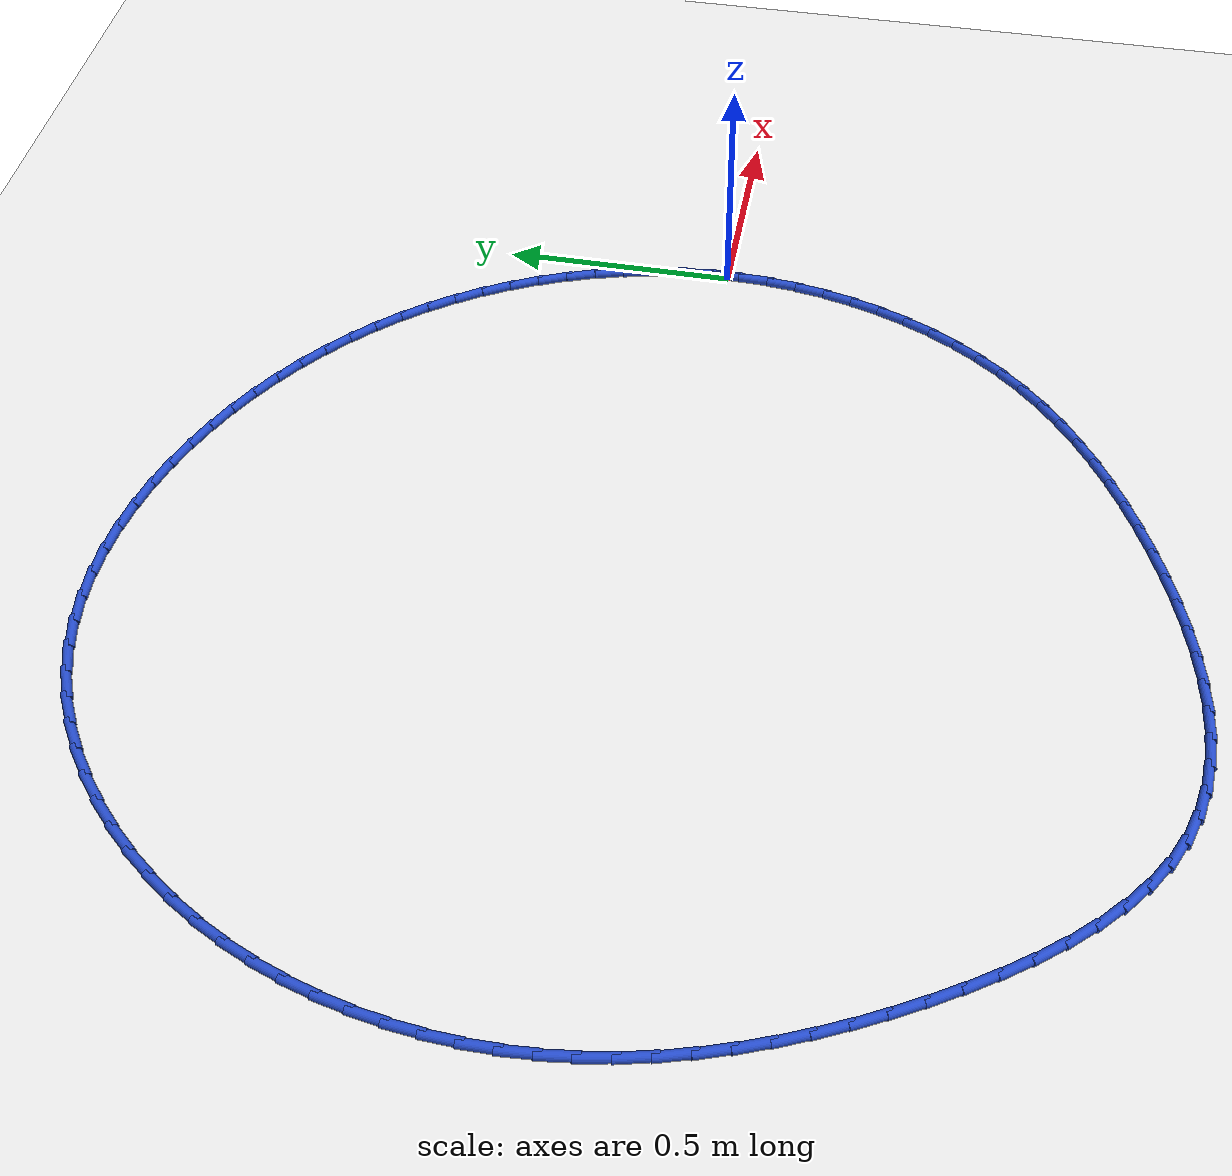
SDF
<sdf version="1.6">
 <world name="default">
  <light name="sun" type="directional">
   <pose>0 0 10 0 -0 0</pose>
   <diffuse>0.8 0.8 0.8 1</diffuse>
   <specular>0.2 0.2 0.2 1</specular>
   <attenuation>
    <range>1000</range>
    <constant>0.9</constant>
    <linear>0.01</linear>
    <quadratic>0.001</quadratic>
   </attenuation>
   <direction>-0.5 0.1 -0.9</direction>
  </light>
  <model name="ground_plane">
   <static>1</static>
   <link name="link">
    <collision name="collision">
     <geometry><plane><normal>0 0 1</normal><size>100 100</size></plane></geometry>
     <surface><friction><ode><mu>100</mu><mu2>50</mu2></ode></friction></surface>
    </collision>
    <visual name="visual">
     <cast_shadows>0</cast_shadows>
     <geometry><plane><normal>0 0 1</normal><size>100 100</size></plane></geometry>
     <material>
      <script><uri>file://media/materials/scripts/gazebo.material</uri><name>Gazebo/WhiteGlow</name></script>
     </material>
    </visual>
   </link>
  </model>
  <gravity>0 0 -9.8</gravity>
  <magnetic_field>6e-06 2.3e-05 -4.2e-05</magnetic_field>
  <atmosphere type="adiabatic"/>
  <physics name="default_physics" default="0" type="ode">
   <max_step_size>0.001</max_step_size>
   <real_time_factor>1</real_time_factor>
   <real_time_update_rate>1000</real_time_update_rate>
  </physics>
  <scene><ambient>0.4 0.4 0.4 1</ambient><background>0.7 0.7 0.7 1</background><shadows>1</shadows></scene>
  <spherical_coordinates>
   <surface_model>EARTH_WGS84</surface_model>
   <latitude_deg>0</latitude_deg>
   <longitude_deg>0</longitude_deg>
   <elevation>0</elevation>
   <heading_deg>0</heading_deg>
  </spherical_coordinates>
  <model name="line">
   <link name="link_0">
    <pose>-1.734723475976807e-17 9.71445146547012e-17 0.01 0 1.57 -1.5314903765350154</pose>
    <collision name="collision">
     <geometry><cylinder><radius>0.01</radius><length>0.08</length></cylinder></geometry>
    </collision>
    <visual name="visual">
     <material>
      <script><name>Gazebo/Blue</name><uri>file://media/materials/scripts/gazebo.material</uri></script>
     </material>
     <geometry><cylinder><radius>0.01</radius><length>0.08</length></cylinder></geometry>
    </visual>
   </link>
   <link name="link_1">
    <pose>-0.0025888472064386184 0.0658300799792817 0.01 0 1.57 -1.4633554747407136</pose>
    <collision name="collision">
     <geometry><cylinder><radius>0.01</radius><length>0.08</length></cylinder></geometry>
    </collision>
    <visual name="visual">
     <material>
      <script><name>Gazebo/Blue</name><uri>file://media/materials/scripts/gazebo.material</uri></script>
     </material>
     <geometry><cylinder><radius>0.01</radius><length>0.08</length></cylinder></geometry>
    </visual>
   </link>
   <link name="link_2">
    <pose>-0.0096381332063143 0.13118827850951043 0.01 0 1.57 -1.3970134633555027</pose>
    <collision name="collision">
     <geometry><cylinder><radius>0.01</radius><length>0.08</length></cylinder></geometry>
    </collision>
    <visual name="visual">
     <material>
      <script><name>Gazebo/Blue</name><uri>file://media/materials/scripts/gazebo.material</uri></script>
     </material>
     <geometry><cylinder><radius>0.01</radius><length>0.08</length></cylinder></geometry>
    </visual>
   </link>
   <link name="link_3">
    <pose>-0.020991724637044087 0.1958613180532604 0.01 0 1.57 -1.332349528927706</pose>
    <collision name="collision">
     <geometry><cylinder><radius>0.01</radius><length>0.08</length></cylinder></geometry>
    </collision>
    <visual name="visual">
     <material>
      <script><name>Gazebo/Blue</name><uri>file://media/materials/scripts/gazebo.material</uri></script>
     </material>
     <geometry><cylinder><radius>0.01</radius><length>0.08</length></cylinder></geometry>
    </visual>
   </link>
   <link name="link_4">
    <pose>-0.03649348813604504 0.2596359210731062 0.01 0 1.57 -1.2691964693858342</pose>
    <collision name="collision">
     <geometry><cylinder><radius>0.01</radius><length>0.08</length></cylinder></geometry>
    </collision>
    <visual name="visual">
     <material>
      <script><name>Gazebo/Blue</name><uri>file://media/materials/scripts/gazebo.material</uri></script>
     </material>
     <geometry><cylinder><radius>0.01</radius><length>0.08</length></cylinder></geometry>
    </visual>
   </link>
   <link name="link_5">
    <pose>-0.055987290340734186 0.32229881003162203 0.01 0 1.57 -1.2073458185094554</pose>
    <collision name="collision">
     <geometry><cylinder><radius>0.01</radius><length>0.08</length></cylinder></geometry>
    </collision>
    <visual name="visual">
     <material>
      <script><name>Gazebo/Blue</name><uri>file://media/materials/scripts/gazebo.material</uri></script>
     </material>
     <geometry><cylinder><radius>0.01</radius><length>0.08</length></cylinder></geometry>
    </visual>
   </link>
   <link name="link_6">
    <pose>-0.07931699788852856 0.3836367073913823 0.01 0 1.57 -1.1465575310121288</pose>
    <collision name="collision">
     <geometry><cylinder><radius>0.01</radius><length>0.08</length></cylinder></geometry>
    </collision>
    <visual name="visual">
     <material>
      <script><name>Gazebo/Blue</name><uri>file://media/materials/scripts/gazebo.material</uri></script>
     </material>
     <geometry><cylinder><radius>0.01</radius><length>0.08</length></cylinder></geometry>
    </visual>
   </link>
   <link name="link_7">
    <pose>-0.1063264774168452 0.4434363356149611 0.01 0 1.57 -1.0865680494738263</pose>
    <collision name="collision">
     <geometry><cylinder><radius>0.01</radius><length>0.08</length></cylinder></geometry>
    </collision>
    <visual name="visual">
     <material>
      <script><name>Gazebo/Blue</name><uri>file://media/materials/scripts/gazebo.material</uri></script>
     </material>
     <geometry><cylinder><radius>0.01</radius><length>0.08</length></cylinder></geometry>
    </visual>
   </link>
   <link name="link_8">
    <pose>-0.13685959556310115 0.5014844171649332 0.01 0 1.57 -1.0270968449950435</pose>
    <collision name="collision">
     <geometry><cylinder><radius>0.01</radius><length>0.08</length></cylinder></geometry>
    </collision>
    <visual name="visual">
     <material>
      <script><name>Gazebo/Blue</name><uri>file://media/materials/scripts/gazebo.material</uri></script>
     </material>
     <geometry><cylinder><radius>0.01</radius><length>0.08</length></cylinder></geometry>
    </visual>
   </link>
   <link name="link_9">
    <pose>-0.17076021896471344 0.5575676745038725 0.01 0 1.57 -0.9678672213904865</pose>
    <collision name="collision">
     <geometry><cylinder><radius>0.01</radius><length>0.08</length></cylinder></geometry>
    </collision>
    <visual name="visual">
     <material>
      <script><name>Gazebo/Blue</name><uri>file://media/materials/scripts/gazebo.material</uri></script>
     </material>
     <geometry><cylinder><radius>0.01</radius><length>0.08</length></cylinder></geometry>
    </visual>
   </link>
   <link name="link_10">
    <pose>-0.20787223167147406 0.6114746464723497 0.01 0 1.57 -0.9090949407368885</pose>
    <collision name="collision">
     <geometry><cylinder><radius>0.01</radius><length>0.08</length></cylinder></geometry>
    </collision>
    <visual name="visual">
     <material>
      <script><name>Gazebo/Blue</name><uri>file://media/materials/scripts/gazebo.material</uri></script>
     </material>
     <geometry><cylinder><radius>0.01</radius><length>0.08</length></cylinder></geometry>
    </visual>
   </link>
   <link name="link_11">
    <pose>-0.24804004518041856 0.6630488927552359 0.01 0 1.57 -0.8512343007560685</pose>
    <collision name="collision">
     <geometry><cylinder><radius>0.01</radius><length>0.08</length></cylinder></geometry>
    </collision>
    <visual name="visual">
     <material>
      <script><name>Gazebo/Blue</name><uri>file://media/materials/scripts/gazebo.material</uri></script>
     </material>
     <geometry><cylinder><radius>0.01</radius><length>0.08</length></cylinder></geometry>
    </visual>
   </link>
   <link name="link_12">
    <pose>-0.29110868040884036 0.7121975449254208 0.01 0 1.57 -0.794259275289885</pose>
    <collision name="collision">
     <geometry><cylinder><radius>0.01</radius><length>0.08</length></cylinder></geometry>
    </collision>
    <visual name="visual">
     <material>
      <script><name>Gazebo/Blue</name><uri>file://media/materials/scripts/gazebo.material</uri></script>
     </material>
     <geometry><cylinder><radius>0.01</radius><length>0.08</length></cylinder></geometry>
    </visual>
   </link>
   <link name="link_13">
    <pose>-0.3369231921883356 0.7588312723381834 0.01 0 1.57 -0.7380923761975801</pose>
    <collision name="collision">
     <geometry><cylinder><radius>0.01</radius><length>0.08</length></cylinder></geometry>
    </collision>
    <visual name="visual">
     <material>
      <script><name>Gazebo/Blue</name><uri>file://media/materials/scripts/gazebo.material</uri></script>
     </material>
     <geometry><cylinder><radius>0.01</radius><length>0.08</length></cylinder></geometry>
    </visual>
   </link>
   <link name="link_14">
    <pose>-0.38532863535050055 0.802860744348803 0.01 0 1.57 -0.6826390186258341</pose>
    <collision name="collision">
     <geometry><cylinder><radius>0.01</radius><length>0.08</length></cylinder></geometry>
    </collision>
    <visual name="visual">
     <material>
      <script><name>Gazebo/Blue</name><uri>file://media/materials/scripts/gazebo.material</uri></script>
     </material>
     <geometry><cylinder><radius>0.01</radius><length>0.08</length></cylinder></geometry>
    </visual>
   </link>
   <link name="link_15">
    <pose>-0.4361700647269308 0.8441966303125579 0.01 0 1.57 -0.6277914361749424</pose>
    <collision name="collision">
     <geometry><cylinder><radius>0.01</radius><length>0.08</length></cylinder></geometry>
    </collision>
    <visual name="visual">
     <material>
      <script><name>Gazebo/Blue</name><uri>file://media/materials/scripts/gazebo.material</uri></script>
     </material>
     <geometry><cylinder><radius>0.01</radius><length>0.08</length></cylinder></geometry>
    </visual>
   </link>
   <link name="link_16">
    <pose>-0.4892925351492231 0.8827495995847275 0.01 0 1.57 -0.5734323031386362</pose>
    <collision name="collision">
     <geometry><cylinder><radius>0.01</radius><length>0.08</length></cylinder></geometry>
    </collision>
    <visual name="visual">
     <material>
      <script><name>Gazebo/Blue</name><uri>file://media/materials/scripts/gazebo.material</uri></script>
     </material>
     <geometry><cylinder><radius>0.01</radius><length>0.08</length></cylinder></geometry>
    </visual>
   </link>
   <link name="link_17">
    <pose>-0.5445411014489732 0.9184303215205903 0.01 0 1.57 -0.5194380513625131</pose>
    <collision name="collision">
     <geometry><cylinder><radius>0.01</radius><length>0.08</length></cylinder></geometry>
    </collision>
    <visual name="visual">
     <material>
      <script><name>Gazebo/Blue</name><uri>file://media/materials/scripts/gazebo.material</uri></script>
     </material>
     <geometry><cylinder><radius>0.01</radius><length>0.08</length></cylinder></geometry>
    </visual>
   </link>
   <link name="link_18">
    <pose>-0.6017608184577772 0.9511494654754258 0.01 0 1.57 -0.4656819093291563</pose>
    <collision name="collision">
     <geometry><cylinder><radius>0.01</radius><length>0.08</length></cylinder></geometry>
    </collision>
    <visual name="visual">
     <material>
      <script><name>Gazebo/Blue</name><uri>file://media/materials/scripts/gazebo.material</uri></script>
     </material>
     <geometry><cylinder><radius>0.01</radius><length>0.08</length></cylinder></geometry>
    </visual>
   </link>
   <link name="link_19">
    <pose>-0.6607967410072314 0.9808177008045125 0.01 0 1.57 -0.4120367171232856</pose>
    <collision name="collision">
     <geometry><cylinder><radius>0.01</radius><length>0.08</length></cylinder></geometry>
    </collision>
    <visual name="visual">
     <material>
      <script><name>Gazebo/Blue</name><uri>file://media/materials/scripts/gazebo.material</uri></script>
     </material>
     <geometry><cylinder><radius>0.01</radius><length>0.08</length></cylinder></geometry>
    </visual>
   </link>
   <link name="link_20">
    <pose>-0.721493923928932 1.0073456968631296 0.01 0 1.57 -0.3583732691243777</pose>
    <collision name="collision">
     <geometry><cylinder><radius>0.01</radius><length>0.08</length></cylinder></geometry>
    </collision>
    <visual name="visual">
     <material>
      <script><name>Gazebo/Blue</name><uri>file://media/materials/scripts/gazebo.material</uri></script>
     </material>
     <geometry><cylinder><radius>0.01</radius><length>0.08</length></cylinder></geometry>
    </visual>
   </link>
   <link name="link_21">
    <pose>-0.7836968962669849 1.030643619972906 0.01 0 1.57 -0.30409369065101527</pose>
    <collision name="collision">
     <geometry><cylinder><radius>0.01</radius><length>0.08</length></cylinder></geometry>
    </collision>
    <visual name="visual">
     <material>
      <script><name>Gazebo/Blue</name><uri>file://media/materials/scripts/gazebo.material</uri></script>
     </material>
     <geometry><cylinder><radius>0.01</radius><length>0.08</length></cylinder></geometry>
    </visual>
   </link>
   <link name="link_22">
    <pose>-0.8471984615696629 1.0505721494184768 0.01 0 1.57 -0.24796349556761188</pose>
    <collision name="collision">
     <geometry><cylinder><radius>0.01</radius><length>0.08</length></cylinder></geometry>
    </collision>
    <visual name="visual">
     <material>
      <script><name>Gazebo/Blue</name><uri>file://media/materials/scripts/gazebo.material</uri></script>
     </material>
     <geometry><cylinder><radius>0.01</radius><length>0.08</length></cylinder></geometry>
    </visual>
   </link>
   <link name="link_23">
    <pose>-0.911696800593447 1.06690143656353 0.01 0 1.57 -0.18932696716811295</pose>
    <collision name="collision">
     <geometry><cylinder><radius>0.01</radius><length>0.08</length></cylinder></geometry>
    </collision>
    <visual name="visual">
     <material>
      <script><name>Gazebo/Blue</name><uri>file://media/materials/scripts/gazebo.material</uri></script>
     </material>
     <geometry><cylinder><radius>0.01</radius><length>0.08</length></cylinder></geometry>
    </visual>
   </link>
   <link name="link_24">
    <pose>-0.9768799950252762 1.0793919707468667 0.01 0 1.57 -0.12762418800481992</pose>
    <collision name="collision">
     <geometry><cylinder><radius>0.01</radius><length>0.08</length></cylinder></geometry>
    </collision>
    <visual name="visual">
     <material>
      <script><name>Gazebo/Blue</name><uri>file://media/materials/scripts/gazebo.material</uri></script>
     </material>
     <geometry><cylinder><radius>0.01</radius><length>0.08</length></cylinder></geometry>
    </visual>
   </link>
   <link name="link_25">
    <pose>-1.0424361265520887 1.0878042413072855 0.01 0 1.57 -0.06231898742299905</pose>
    <collision name="collision">
     <geometry><cylinder><radius>0.01</radius><length>0.08</length></cylinder></geometry>
    </collision>
    <visual name="visual">
     <material>
      <script><name>Gazebo/Blue</name><uri>file://media/materials/scripts/gazebo.material</uri></script>
     </material>
     <geometry><cylinder><radius>0.01</radius><length>0.08</length></cylinder></geometry>
    </visual>
   </link>
   <link name="link_26">
    <pose>-1.1080532768608233 1.0918987375835885 0.01 0 1.57 0.0070798146022550065</pose>
    <collision name="collision">
     <geometry><cylinder><radius>0.01</radius><length>0.08</length></cylinder></geometry>
    </collision>
    <visual name="visual">
     <material>
      <script><name>Gazebo/Blue</name><uri>file://media/materials/scripts/gazebo.material</uri></script>
     </material>
     <geometry><cylinder><radius>0.01</radius><length>0.08</length></cylinder></geometry>
    </visual>
   </link>
   <link name="link_27">
    <pose>-1.173419527638418 1.0914359489145744 0.01 0 1.57 0.08098461248828664</pose>
    <collision name="collision">
     <geometry><cylinder><radius>0.01</radius><length>0.08</length></cylinder></geometry>
    </collision>
    <visual name="visual">
     <material>
      <script><name>Gazebo/Blue</name><uri>file://media/materials/scripts/gazebo.material</uri></script>
     </material>
     <geometry><cylinder><radius>0.01</radius><length>0.08</length></cylinder></geometry>
    </visual>
   </link>
   <link name="link_28">
    <pose>-1.2382229605718122 1.0861763646390445 0.01 0 1.57 0.15968153696898146</pose>
    <collision name="collision">
     <geometry><cylinder><radius>0.01</radius><length>0.08</length></cylinder></geometry>
    </collision>
    <visual name="visual">
     <material>
      <script><name>Gazebo/Blue</name><uri>file://media/materials/scripts/gazebo.material</uri></script>
     </material>
     <geometry><cylinder><radius>0.01</radius><length>0.08</length></cylinder></geometry>
    </visual>
   </link>
   <link name="link_29">
    <pose>-1.3021516573479437 1.075880474095799 0.01 0 1.57 0.2432691773539436</pose>
    <collision name="collision">
     <geometry><cylinder><radius>0.01</radius><length>0.08</length></cylinder></geometry>
    </collision>
    <visual name="visual">
     <material>
      <script><name>Gazebo/Blue</name><uri>file://media/materials/scripts/gazebo.material</uri></script>
     </material>
     <geometry><cylinder><radius>0.01</radius><length>0.08</length></cylinder></geometry>
    </visual>
   </link>
   <link name="link_30">
    <pose>-1.3648937154146403 1.0603088712041178 0.01 0 1.57 0.3296327493359904</pose>
    <collision name="collision">
     <geometry><cylinder><radius>0.01</radius><length>0.08</length></cylinder></geometry>
    </collision>
    <visual name="visual">
     <material>
      <script><name>Gazebo/Blue</name><uri>file://media/materials/scripts/gazebo.material</uri></script>
     </material>
     <geometry><cylinder><radius>0.01</radius><length>0.08</length></cylinder></geometry>
    </visual>
   </link>
   <link name="link_31">
    <pose>-1.426156497012637 1.039349980322061 0.01 0 1.57 0.41282230757526744</pose>
    <collision name="collision">
     <geometry><cylinder><radius>0.01</radius><length>0.08</length></cylinder></geometry>
    </collision>
    <visual name="visual">
     <material>
      <script><name>Gazebo/Blue</name><uri>file://media/materials/scripts/gazebo.material</uri></script>
     </material>
     <geometry><cylinder><radius>0.01</radius><length>0.08</length></cylinder></geometry>
    </visual>
   </link>
   <link name="link_32">
    <pose>-1.4857040981597964 1.013268679562356 0.01 0 1.57 0.4919310198661978</pose>
    <collision name="collision">
     <geometry><cylinder><radius>0.01</radius><length>0.08</length></cylinder></geometry>
    </collision>
    <visual name="visual">
     <material>
      <script><name>Gazebo/Blue</name><uri>file://media/materials/scripts/gazebo.material</uri></script>
     </material>
     <geometry><cylinder><radius>0.01</radius><length>0.08</length></cylinder></geometry>
    </visual>
   </link>
   <link name="link_33">
    <pose>-1.5433110067360272 0.9823988016479208 0.01 0 1.57 0.5672961375626149</pose>
    <collision name="collision">
     <geometry><cylinder><radius>0.01</radius><length>0.08</length></cylinder></geometry>
    </collision>
    <visual name="visual">
     <material>
      <script><name>Gazebo/Blue</name><uri>file://media/materials/scripts/gazebo.material</uri></script>
     </material>
     <geometry><cylinder><radius>0.01</radius><length>0.08</length></cylinder></geometry>
    </visual>
   </link>
   <link name="link_34">
    <pose>-1.5987517106212408 0.9470741793016763 0.01 0 1.57 0.6393719625316686</pose>
    <collision name="collision">
     <geometry><cylinder><radius>0.01</radius><length>0.08</length></cylinder></geometry>
    </collision>
    <visual name="visual">
     <material>
      <script><name>Gazebo/Blue</name><uri>file://media/materials/scripts/gazebo.material</uri></script>
     </material>
     <geometry><cylinder><radius>0.01</radius><length>0.08</length></cylinder></geometry>
    </visual>
   </link>
   <link name="link_35">
    <pose>-1.6518006976953463 0.9076286452465414 0.01 0 1.57 0.7086879006740975</pose>
    <collision name="collision">
     <geometry><cylinder><radius>0.01</radius><length>0.08</length></cylinder></geometry>
    </collision>
    <visual name="visual">
     <material>
      <script><name>Gazebo/Blue</name><uri>file://media/materials/scripts/gazebo.material</uri></script>
     </material>
     <geometry><cylinder><radius>0.01</radius><length>0.08</length></cylinder></geometry>
    </visual>
   </link>
   <link name="link_36">
    <pose>-1.7022324558382547 0.8643960322054365 0.01 0 1.57 0.7758184090268523</pose>
    <collision name="collision">
     <geometry><cylinder><radius>0.01</radius><length>0.08</length></cylinder></geometry>
    </collision>
    <visual name="visual">
     <material>
      <script><name>Gazebo/Blue</name><uri>file://media/materials/scripts/gazebo.material</uri></script>
     </material>
     <geometry><cylinder><radius>0.01</radius><length>0.08</length></cylinder></geometry>
    </visual>
   </link>
   <link name="link_37">
    <pose>-1.7498214729298764 0.8177101729012802 0.01 0 1.57 0.8413635226080065</pose>
    <collision name="collision">
     <geometry><cylinder><radius>0.01</radius><length>0.08</length></cylinder></geometry>
    </collision>
    <visual name="visual">
     <material>
      <script><name>Gazebo/Blue</name><uri>file://media/materials/scripts/gazebo.material</uri></script>
     </material>
     <geometry><cylinder><radius>0.01</radius><length>0.08</length></cylinder></geometry>
    </visual>
   </link>
   <link name="link_38">
    <pose>-1.7943422368501214 0.7679049000569927 0.01 0 1.57 0.9059377327433104</pose>
    <collision name="collision">
     <geometry><cylinder><radius>0.01</radius><length>0.08</length></cylinder></geometry>
    </collision>
    <visual name="visual">
     <material>
      <script><name>Gazebo/Blue</name><uri>file://media/materials/scripts/gazebo.material</uri></script>
     </material>
     <geometry><cylinder><radius>0.01</radius><length>0.08</length></cylinder></geometry>
    </visual>
   </link>
   <link name="link_39">
    <pose>-1.8355692354789 0.7153140463954935 0.01 0 1.57 0.9701618212731432</pose>
    <collision name="collision">
     <geometry><cylinder><radius>0.01</radius><length>0.08</length></cylinder></geometry>
    </collision>
    <visual name="visual">
     <material>
      <script><name>Gazebo/Blue</name><uri>file://media/materials/scripts/gazebo.material</uri></script>
     </material>
     <geometry><cylinder><radius>0.01</radius><length>0.08</length></cylinder></geometry>
    </visual>
   </link>
   <link name="link_40">
    <pose>-1.8732772732494196 0.6602713359724824 0.01 0 1.57 1.03408395944858</pose>
    <collision name="collision">
     <geometry><cylinder><radius>0.01</radius><length>0.08</length></cylinder></geometry>
    </collision>
    <visual name="visual">
     <material>
      <script><name>Gazebo/Blue</name><uri>file://media/materials/scripts/gazebo.material</uri></script>
     </material>
     <geometry><cylinder><radius>0.01</radius><length>0.08</length></cylinder></geometry>
    </visual>
   </link>
   <link name="link_41">
    <pose>-1.9072977986672632 0.6030910479226209 0.01 0 1.57 1.0968591992521557</pose>
    <collision name="collision">
     <geometry><cylinder><radius>0.01</radius><length>0.08</length></cylinder></geometry>
    </collision>
    <visual name="visual">
     <material>
      <script><name>Gazebo/Blue</name><uri>file://media/materials/scripts/gazebo.material</uri></script>
     </material>
     <geometry><cylinder><radius>0.01</radius><length>0.08</length></cylinder></geometry>
    </visual>
   </link>
   <link name="link_42">
    <pose>-1.9375838513696568 0.544045721268066 0.01 0 1.57 1.1585389448319865</pose>
    <collision name="collision">
     <geometry><cylinder><radius>0.01</radius><length>0.08</length></cylinder></geometry>
    </collision>
    <visual name="visual">
     <material>
      <script><name>Gazebo/Blue</name><uri>file://media/materials/scripts/gazebo.material</uri></script>
     </material>
     <geometry><cylinder><radius>0.01</radius><length>0.08</length></cylinder></geometry>
    </visual>
   </link>
   <link name="link_43">
    <pose>-1.9641042055284932 0.48340249363994775 0.01 0 1.57 1.2193567514422645</pose>
    <collision name="collision">
     <geometry><cylinder><radius>0.01</radius><length>0.08</length></cylinder></geometry>
    </collision>
    <visual name="visual">
     <material>
      <script><name>Gazebo/Blue</name><uri>file://media/materials/scripts/gazebo.material</uri></script>
     </material>
     <geometry><cylinder><radius>0.01</radius><length>0.08</length></cylinder></geometry>
    </visual>
   </link>
   <link name="link_44">
    <pose>-1.986827635315666 0.421428502669397 0.01 0 1.57 1.279572486791814</pose>
    <collision name="collision">
     <geometry><cylinder><radius>0.01</radius><length>0.08</length></cylinder></geometry>
    </collision>
    <visual name="visual">
     <material>
      <script><name>Gazebo/Blue</name><uri>file://media/materials/scripts/gazebo.material</uri></script>
     </material>
     <geometry><cylinder><radius>0.01</radius><length>0.08</length></cylinder></geometry>
    </visual>
   </link>
   <link name="link_45">
    <pose>-2.0057229149030666 0.3583908859875449 0.01 0 1.57 1.339466476971857</pose>
    <collision name="collision">
     <geometry><cylinder><radius>0.01</radius><length>0.08</length></cylinder></geometry>
    </collision>
    <visual name="visual">
     <material>
      <script><name>Gazebo/Blue</name><uri>file://media/materials/scripts/gazebo.material</uri></script>
     </material>
     <geometry><cylinder><radius>0.01</radius><length>0.08</length></cylinder></geometry>
    </visual>
   </link>
   <link name="link_46">
    <pose>-2.0207588184625904 0.29455678122552237 0.01 0 1.57 1.3993346432360907</pose>
    <collision name="collision">
     <geometry><cylinder><radius>0.01</radius><length>0.08</length></cylinder></geometry>
    </collision>
    <visual name="visual">
     <material>
      <script><name>Gazebo/Blue</name><uri>file://media/materials/scripts/gazebo.material</uri></script>
     </material>
     <geometry><cylinder><radius>0.01</radius><length>0.08</length></cylinder></geometry>
    </visual>
   </link>
   <link name="link_47">
    <pose>-2.031904120166129 0.23019332601446002 0.01 0 1.57 1.4594842781552726</pose>
    <collision name="collision">
     <geometry><cylinder><radius>0.01</radius><length>0.08</length></cylinder></geometry>
    </collision>
    <visual name="visual">
     <material>
      <script><name>Gazebo/Blue</name><uri>file://media/materials/scripts/gazebo.material</uri></script>
     </material>
     <geometry><cylinder><radius>0.01</radius><length>0.08</length></cylinder></geometry>
    </visual>
   </link>
   <link name="link_48">
    <pose>-2.0391275941855755 0.16556765798548928 0.01 0 1.57 1.520230015831952</pose>
    <collision name="collision">
     <geometry><cylinder><radius>0.01</radius><length>0.08</length></cylinder></geometry>
    </collision>
    <visual name="visual">
     <material>
      <script><name>Gazebo/Blue</name><uri>file://media/materials/scripts/gazebo.material</uri></script>
     </material>
     <geometry><cylinder><radius>0.01</radius><length>0.08</length></cylinder></geometry>
    </visual>
   </link>
   <link name="link_49">
    <pose>-2.042398014692824 0.10094691476974024 0.01 0 1.57 -1.5597171764462874</pose>
    <collision name="collision">
     <geometry><cylinder><radius>0.01</radius><length>0.08</length></cylinder></geometry>
    </collision>
    <visual name="visual">
     <material>
      <script><name>Gazebo/Blue</name><uri>file://media/materials/scripts/gazebo.material</uri></script>
     </material>
     <geometry><cylinder><radius>0.01</radius><length>0.08</length></cylinder></geometry>
    </visual>
   </link>
   <link name="link_50">
    <pose>-2.0416850444626595 0.03659711936988803 0.01 0 1.57 -1.4980446476731157</pose>
    <collision name="collision">
     <geometry><cylinder><radius>0.01</radius><length>0.08</length></cylinder></geometry>
    </collision>
    <visual name="visual">
     <material>
      <script><name>Gazebo/Blue</name><uri>file://media/materials/scripts/gazebo.material</uri></script>
     </material>
     <geometry><cylinder><radius>0.01</radius><length>0.08</length></cylinder></geometry>
    </visual>
   </link>
   <link name="link_51">
    <pose>-2.0370279805102665 -0.027303051658697116 0.01 0 1.57 -1.438442334820163</pose>
    <collision name="collision">
     <geometry><cylinder><radius>0.01</radius><length>0.08</length></cylinder></geometry>
    </collision>
    <visual name="visual">
     <material>
      <script><name>Gazebo/Blue</name><uri>file://media/materials/scripts/gazebo.material</uri></script>
     </material>
     <geometry><cylinder><radius>0.01</radius><length>0.08</length></cylinder></geometry>
    </visual>
   </link>
   <link name="link_52">
    <pose>-2.0285846566201737 -0.09072360961332583 0.01 0 1.57 -1.381434007414877</pose>
    <collision name="collision">
     <geometry><cylinder><radius>0.01</radius><length>0.08</length></cylinder></geometry>
    </collision>
    <visual name="visual">
     <material>
      <script><name>Gazebo/Blue</name><uri>file://media/materials/scripts/gazebo.material</uri></script>
     </material>
     <geometry><cylinder><radius>0.01</radius><length>0.08</length></cylinder></geometry>
    </visual>
   </link>
   <link name="link_53">
    <pose>-2.016524451946018 -0.15364904784738545 0.01 0 1.57 -1.3272657565569879</pose>
    <collision name="collision">
     <geometry><cylinder><radius>0.01</radius><length>0.08</length></cylinder></geometry>
    </collision>
    <visual name="visual">
     <material>
      <script><name>Gazebo/Blue</name><uri>file://media/materials/scripts/gazebo.material</uri></script>
     </material>
     <geometry><cylinder><radius>0.01</radius><length>0.08</length></cylinder></geometry>
    </visual>
   </link>
   <link name="link_54">
    <pose>-2.001016745641435 -0.2160638597142631 0.01 0 1.57 -1.2760929389971505</pose>
    <collision name="collision">
     <geometry><cylinder><radius>0.01</radius><length>0.08</length></cylinder></geometry>
    </collision>
    <visual name="visual">
     <material>
      <script><name>Gazebo/Blue</name><uri>file://media/materials/scripts/gazebo.material</uri></script>
     </material>
     <geometry><cylinder><radius>0.01</radius><length>0.08</length></cylinder></geometry>
    </visual>
   </link>
   <link name="link_55">
    <pose>-1.9822309168600623 -0.2779525385673463 0.01 0 1.57 -1.227990479575171</pose>
    <collision name="collision">
     <geometry><cylinder><radius>0.01</radius><length>0.08</length></cylinder></geometry>
    </collision>
    <visual name="visual">
     <material>
      <script><name>Gazebo/Blue</name><uri>file://media/materials/scripts/gazebo.material</uri></script>
     </material>
     <geometry><cylinder><radius>0.01</radius><length>0.08</length></cylinder></geometry>
    </visual>
   </link>
   <link name="link_56">
    <pose>-1.9603363447555346 -0.3392995777600221 0.01 0 1.57 -1.1829660743479817</pose>
    <collision name="collision">
     <geometry><cylinder><radius>0.01</radius><length>0.08</length></cylinder></geometry>
    </collision>
    <visual name="visual">
     <material>
      <script><name>Gazebo/Blue</name><uri>file://media/materials/scripts/gazebo.material</uri></script>
     </material>
     <geometry><cylinder><radius>0.01</radius><length>0.08</length></cylinder></geometry>
    </visual>
   </link>
   <link name="link_57">
    <pose>-1.9355024084814891 -0.4000894706456781 0.01 0 1.57 -1.140974310560011</pose>
    <collision name="collision">
     <geometry><cylinder><radius>0.01</radius><length>0.08</length></cylinder></geometry>
    </collision>
    <visual name="visual">
     <material>
      <script><name>Gazebo/Blue</name><uri>file://media/materials/scripts/gazebo.material</uri></script>
     </material>
     <geometry><cylinder><radius>0.01</radius><length>0.08</length></cylinder></geometry>
    </visual>
   </link>
   <link name="link_58">
    <pose>-1.907898487191562 -0.4603067105777006 0.01 0 1.57 -1.1019302455201614</pose>
    <collision name="collision">
     <geometry><cylinder><radius>0.01</radius><length>0.08</length></cylinder></geometry>
    </collision>
    <visual name="visual">
     <material>
      <script><name>Gazebo/Blue</name><uri>file://media/materials/scripts/gazebo.material</uri></script>
     </material>
     <geometry><cylinder><radius>0.01</radius><length>0.08</length></cylinder></geometry>
    </visual>
   </link>
   <link name="link_59">
    <pose>-1.8776939600393894 -0.5199357909094784 0.01 0 1.57 -1.065721538688898</pose>
    <collision name="collision">
     <geometry><cylinder><radius>0.01</radius><length>0.08</length></cylinder></geometry>
    </collision>
    <visual name="visual">
     <material>
      <script><name>Gazebo/Blue</name><uri>file://media/materials/scripts/gazebo.material</uri></script>
     </material>
     <geometry><cylinder><radius>0.01</radius><length>0.08</length></cylinder></geometry>
    </visual>
   </link>
   <link name="link_60">
    <pose>-1.8450582061786078 -0.5789612049943981 0.01 0 1.57 -1.032216936893384</pose>
    <collision name="collision">
     <geometry><cylinder><radius>0.01</radius><length>0.08</length></cylinder></geometry>
    </collision>
    <visual name="visual">
     <material>
      <script><name>Gazebo/Blue</name><uri>file://media/materials/scripts/gazebo.material</uri></script>
     </material>
     <geometry><cylinder><radius>0.01</radius><length>0.08</length></cylinder></geometry>
    </visual>
   </link>
   <link name="link_61">
    <pose>-1.8101605557257057 -0.6373672943032619 0.01 0 1.57 -0.9993034594339968</pose>
    <collision name="collision">
     <geometry><cylinder><radius>0.01</radius><length>0.08</length></cylinder></geometry>
    </collision>
    <visual name="visual">
     <material>
      <script><name>Gazebo/Blue</name><uri>file://media/materials/scripts/gazebo.material</uri></script>
     </material>
     <geometry><cylinder><radius>0.01</radius><length>0.08</length></cylinder></geometry>
    </visual>
   </link>
   <link name="link_62">
    <pose>-1.7731165119139158 -0.6949716824892791 0.01 0 1.57 -0.9608255803576174</pose>
    <collision name="collision">
     <geometry><cylinder><radius>0.01</radius><length>0.08</length></cylinder></geometry>
    </collision>
    <visual name="visual">
     <material>
      <script><name>Gazebo/Blue</name><uri>file://media/materials/scripts/gazebo.material</uri></script>
     </material>
     <geometry><cylinder><radius>0.01</radius><length>0.08</length></cylinder></geometry>
    </visual>
   </link>
   <link name="link_63">
    <pose>-1.7338849704942623 -0.7511069333977535 0.01 0 1.57 -0.9148850784930536</pose>
    <collision name="collision">
     <geometry><cylinder><radius>0.01</radius><length>0.08</length></cylinder></geometry>
    </collision>
    <visual name="visual">
     <material>
      <script><name>Gazebo/Blue</name><uri>file://media/materials/scripts/gazebo.material</uri></script>
     </material>
     <geometry><cylinder><radius>0.01</radius><length>0.08</length></cylinder></geometry>
    </visual>
   </link>
   <link name="link_64">
    <pose>-1.6923965032799133 -0.805017883240153 0.01 0 1.57 -0.8603702153674436</pose>
    <collision name="collision">
     <geometry><cylinder><radius>0.01</radius><length>0.08</length></cylinder></geometry>
    </collision>
    <visual name="visual">
     <material>
      <script><name>Gazebo/Blue</name><uri>file://media/materials/scripts/gazebo.material</uri></script>
     </material>
     <geometry><cylinder><radius>0.01</radius><length>0.08</length></cylinder></geometry>
    </visual>
   </link>
   <link name="link_65">
    <pose>-1.6485816820840395 -0.8559493682279458 0.01 0 1.57 -0.7959563815032326</pose>
    <collision name="collision">
     <geometry><cylinder><radius>0.01</radius><length>0.08</length></cylinder></geometry>
    </collision>
    <visual name="visual">
     <material>
      <script><name>Gazebo/Blue</name><uri>file://media/materials/scripts/gazebo.material</uri></script>
     </material>
     <geometry><cylinder><radius>0.01</radius><length>0.08</length></cylinder></geometry>
    </visual>
   </link>
   <link name="link_66">
    <pose>-1.602371078719808 -0.9031462245725991 0.01 0 1.57 -0.7201749646793872</pose>
    <collision name="collision">
     <geometry><cylinder><radius>0.01</radius><length>0.08</length></cylinder></geometry>
    </collision>
    <visual name="visual">
     <material>
      <script><name>Gazebo/Blue</name><uri>file://media/materials/scripts/gazebo.material</uri></script>
     </material>
     <geometry><cylinder><radius>0.01</radius><length>0.08</length></cylinder></geometry>
    </visual>
   </link>
   <link name="link_67">
    <pose>-1.5536952650003877 -0.9458532884855806 0.01 0 1.57 -0.6315767353550288</pose>
    <collision name="collision">
     <geometry><cylinder><radius>0.01</radius><length>0.08</length></cylinder></geometry>
    </collision>
    <visual name="visual">
     <material>
      <script><name>Gazebo/Blue</name><uri>file://media/materials/scripts/gazebo.material</uri></script>
     </material>
     <geometry><cylinder><radius>0.01</radius><length>0.08</length></cylinder></geometry>
    </visual>
   </link>
   <link name="link_68">
    <pose>-1.5024848127389476 -0.983315396178358 0.01 0 1.57 -0.5290469785567421</pose>
    <collision name="collision">
     <geometry><cylinder><radius>0.01</radius><length>0.08</length></cylinder></geometry>
    </collision>
    <visual name="visual">
     <material>
      <script><name>Gazebo/Blue</name><uri>file://media/materials/scripts/gazebo.material</uri></script>
     </material>
     <geometry><cylinder><radius>0.01</radius><length>0.08</length></cylinder></geometry>
    </visual>
   </link>
   <link name="link_69">
    <pose>-1.4486702937486569 -1.0147773838623992 0.01 0 1.57 -0.4123584638941391</pose>
    <collision name="collision">
     <geometry><cylinder><radius>0.01</radius><length>0.08</length></cylinder></geometry>
    </collision>
    <visual name="visual">
     <material>
      <script><name>Gazebo/Blue</name><uri>file://media/materials/scripts/gazebo.material</uri></script>
     </material>
     <geometry><cylinder><radius>0.01</radius><length>0.08</length></cylinder></geometry>
    </visual>
   </link>
   <link name="link_70">
    <pose>-1.3921833240134336 -1.0394869351573515 0.01 0 1.57 -0.28939374909767523</pose>
    <collision name="collision">
     <geometry><cylinder><radius>0.01</radius><length>0.08</length></cylinder></geometry>
    </collision>
    <visual name="visual">
     <material>
      <script><name>Gazebo/Blue</name><uri>file://media/materials/scripts/gazebo.material</uri></script>
     </material>
     <geometry><cylinder><radius>0.01</radius><length>0.08</length></cylinder></geometry>
    </visual>
   </link>
   <link name="link_71">
    <pose>-1.3330978268527274 -1.0570797995919166 0.01 0 1.57 -0.17575102411804736</pose>
    <collision name="collision">
     <geometry><cylinder><radius>0.01</radius><length>0.08</length></cylinder></geometry>
    </collision>
    <visual name="visual">
     <material>
      <script><name>Gazebo/Blue</name><uri>file://media/materials/scripts/gazebo.material</uri></script>
     </material>
     <geometry><cylinder><radius>0.01</radius><length>0.08</length></cylinder></geometry>
    </visual>
   </link>
   <link name="link_72">
    <pose>-1.27177313852245 -1.0679700353479027 0.01 0 1.57 -0.07418039645986693</pose>
    <collision name="collision">
     <geometry><cylinder><radius>0.01</radius><length>0.08</length></cylinder></geometry>
    </collision>
    <visual name="visual">
     <material>
      <script><name>Gazebo/Blue</name><uri>file://media/materials/scripts/gazebo.material</uri></script>
     </material>
     <geometry><cylinder><radius>0.01</radius><length>0.08</length></cylinder></geometry>
    </visual>
   </link>
   <link name="link_73">
    <pose>-1.2086026839596067 -1.0726646589565103 0.01 0 1.57 0.015379923153703226</pose>
    <collision name="collision">
     <geometry><cylinder><radius>0.01</radius><length>0.08</length></cylinder></geometry>
    </collision>
    <visual name="visual">
     <material>
      <script><name>Gazebo/Blue</name><uri>file://media/materials/scripts/gazebo.material</uri></script>
     </material>
     <geometry><cylinder><radius>0.01</radius><length>0.08</length></cylinder></geometry>
    </visual>
   </link>
   <link name="link_74">
    <pose>-1.1439798881012049 -1.0716706869489405 0.01 0 1.57 0.09374678403868314</pose>
    <collision name="collision">
     <geometry><cylinder><radius>0.01</radius><length>0.08</length></cylinder></geometry>
    </collision>
    <visual name="visual">
     <material>
      <script><name>Gazebo/Blue</name><uri>file://media/materials/scripts/gazebo.material</uri></script>
     </material>
     <geometry><cylinder><radius>0.01</radius><length>0.08</length></cylinder></geometry>
    </visual>
   </link>
   <link name="link_75">
    <pose>-1.0782981758842507 -1.0654951358563938 0.01 0 1.57 0.1621004595471177</pose>
    <collision name="collision">
     <geometry><cylinder><radius>0.01</radius><length>0.08</length></cylinder></geometry>
    </collision>
    <visual name="visual">
     <material>
      <script><name>Gazebo/Blue</name><uri>file://media/materials/scripts/gazebo.material</uri></script>
     </material>
     <geometry><cylinder><radius>0.01</radius><length>0.08</length></cylinder></geometry>
    </visual>
   </link>
   <link name="link_76">
    <pose>-1.01195097224575 -1.0546450222100712 0.01 0 1.57 0.22171907949625969</pose>
    <collision name="collision">
     <geometry><cylinder><radius>0.01</radius><length>0.08</length></cylinder></geometry>
    </collision>
    <visual name="visual">
     <material>
      <script><name>Gazebo/Blue</name><uri>file://media/materials/scripts/gazebo.material</uri></script>
     </material>
     <geometry><cylinder><radius>0.01</radius><length>0.08</length></cylinder></geometry>
    </visual>
   </link>
   <link name="link_77">
    <pose>-0.94533170212271 -1.039627362541174 0.01 0 1.57 0.2738281047072601</pose>
    <collision name="collision">
     <geometry><cylinder><radius>0.01</radius><length>0.08</length></cylinder></geometry>
    </collision>
    <visual name="visual">
     <material>
      <script><name>Gazebo/Blue</name><uri>file://media/materials/scripts/gazebo.material</uri></script>
     </material>
     <geometry><cylinder><radius>0.01</radius><length>0.08</length></cylinder></geometry>
    </visual>
   </link>
   <link name="link_78">
    <pose>-0.878833790452136 -1.0209491733809026 0.01 0 1.57 0.31953006707248616</pose>
    <collision name="collision">
     <geometry><cylinder><radius>0.01</radius><length>0.08</length></cylinder></geometry>
    </collision>
    <visual name="visual">
     <material>
      <script><name>Gazebo/Blue</name><uri>file://media/materials/scripts/gazebo.material</uri></script>
     </material>
     <geometry><cylinder><radius>0.01</radius><length>0.08</length></cylinder></geometry>
    </visual>
   </link>
   <link name="link_79">
    <pose>-0.8128506621710346 -0.9991174712604578 0.01 0 1.57 0.35978210795227766</pose>
    <collision name="collision">
     <geometry><cylinder><radius>0.01</radius><length>0.08</length></cylinder></geometry>
    </collision>
    <visual name="visual">
     <material>
      <script><name>Gazebo/Blue</name><uri>file://media/materials/scripts/gazebo.material</uri></script>
     </material>
     <geometry><cylinder><radius>0.01</radius><length>0.08</length></cylinder></geometry>
    </visual>
   </link>
   <link name="link_80">
    <pose>-0.7477757422164123 -0.9746392727110404 0.01 0 1.57 0.39540036020725927</pose>
    <collision name="collision">
     <geometry><cylinder><radius>0.01</radius><length>0.08</length></cylinder></geometry>
    </collision>
    <visual name="visual">
     <material>
      <script><name>Gazebo/Blue</name><uri>file://media/materials/scripts/gazebo.material</uri></script>
     </material>
     <geometry><cylinder><radius>0.01</radius><length>0.08</length></cylinder></geometry>
    </visual>
   </link>
   <link name="link_81">
    <pose>-0.6840024105967382 -0.94802144095806 0.01 0 1.57 0.4288531545648237</pose>
    <collision name="collision">
     <geometry><cylinder><radius>0.01</radius><length>0.08</length></cylinder></geometry>
    </collision>
    <visual name="visual">
     <material>
      <script><name>Gazebo/Blue</name><uri>file://media/materials/scripts/gazebo.material</uri></script>
     </material>
     <geometry><cylinder><radius>0.01</radius><length>0.08</length></cylinder></geometry>
    </visual>
   </link>
   <link name="link_82">
    <pose>-0.6218787958479325 -0.9196164315108576 0.01 0 1.57 0.4657222336901365</pose>
    <collision name="collision">
     <geometry><cylinder><radius>0.01</radius><length>0.08</length></cylinder></geometry>
    </collision>
    <visual name="visual">
     <material>
      <script><name>Gazebo/Blue</name><uri>file://media/materials/scripts/gazebo.material</uri></script>
     </material>
     <geometry><cylinder><radius>0.01</radius><length>0.08</length></cylinder></geometry>
    </visual>
   </link>
   <link name="link_83">
    <pose>-0.5616226870066815 -0.8893319535919308 0.01 0 1.57 0.5071740187112004</pose>
    <collision name="collision">
     <geometry><cylinder><radius>0.01</radius><length>0.08</length></cylinder></geometry>
    </collision>
    <visual name="visual">
     <material>
      <script><name>Gazebo/Blue</name><uri>file://media/materials/scripts/gazebo.material</uri></script>
     </material>
     <geometry><cylinder><radius>0.01</radius><length>0.08</length></cylinder></geometry>
    </visual>
   </link>
   <link name="link_84">
    <pose>-0.5034285477044396 -0.8569961251454054 0.01 0 1.57 0.5534146798543069</pose>
    <collision name="collision">
     <geometry><cylinder><radius>0.01</radius><length>0.08</length></cylinder></geometry>
    </collision>
    <visual name="visual">
     <material>
      <script><name>Gazebo/Blue</name><uri>file://media/materials/scripts/gazebo.material</uri></script>
     </material>
     <geometry><cylinder><radius>0.01</radius><length>0.08</length></cylinder></geometry>
    </visual>
   </link>
   <link name="link_85">
    <pose>-0.44749084157265895 -0.8224370641154066 0.01 0 1.57 0.6045941969561079</pose>
    <collision name="collision">
     <geometry><cylinder><radius>0.01</radius><length>0.08</length></cylinder></geometry>
    </collision>
    <visual name="visual">
     <material>
      <script><name>Gazebo/Blue</name><uri>file://media/materials/scripts/gazebo.material</uri></script>
     </material>
     <geometry><cylinder><radius>0.01</radius><length>0.08</length></cylinder></geometry>
    </visual>
   </link>
   <link name="link_86">
    <pose>-0.3940040322427935 -0.7854828884460597 0.01 0 1.57 0.6607713284614881</pose>
    <collision name="collision">
     <geometry><cylinder><radius>0.01</radius><length>0.08</length></cylinder></geometry>
    </collision>
    <visual name="visual">
     <material>
      <script><name>Gazebo/Blue</name><uri>file://media/materials/scripts/gazebo.material</uri></script>
     </material>
     <geometry><cylinder><radius>0.01</radius><length>0.08</length></cylinder></geometry>
    </visual>
   </link>
   <link name="link_87">
    <pose>-0.343162583346297 -0.7459617160814909 0.01 0 1.57 0.7218734347455225</pose>
    <collision name="collision">
     <geometry><cylinder><radius>0.01</radius><length>0.08</length></cylinder></geometry>
    </collision>
    <visual name="visual">
     <material>
      <script><name>Gazebo/Blue</name><uri>file://media/materials/scripts/gazebo.material</uri></script>
     </material>
     <geometry><cylinder><radius>0.01</radius><length>0.08</length></cylinder></geometry>
    </visual>
   </link>
   <link name="link_88">
    <pose>-0.2951609585146228 -0.7037016649658253 0.01 0 1.57 0.7876555254993978</pose>
    <collision name="collision">
     <geometry><cylinder><radius>0.01</radius><length>0.08</length></cylinder></geometry>
    </collision>
    <visual name="visual">
     <material>
      <script><name>Gazebo/Blue</name><uri>file://media/materials/scripts/gazebo.material</uri></script>
     </material>
     <geometry><cylinder><radius>0.01</radius><length>0.08</length></cylinder></geometry>
    </visual>
   </link>
   <link name="link_89">
    <pose>-0.2501936213792245 -0.658530853043189 0.01 0 1.57 0.857665926209899</pose>
    <collision name="collision">
     <geometry><cylinder><radius>0.01</radius><length>0.08</length></cylinder></geometry>
    </collision>
    <visual name="visual">
     <material>
      <script><name>Gazebo/Blue</name><uri>file://media/materials/scripts/gazebo.material</uri></script>
     </material>
     <geometry><cylinder><radius>0.01</radius><length>0.08</length></cylinder></geometry>
    </visual>
   </link>
   <link name="link_90">
    <pose>-0.20845503557155556 -0.6102773982577067 0.01 0 1.57 0.9310549709052074</pose>
    <collision name="collision">
     <geometry><cylinder><radius>0.01</radius><length>0.08</length></cylinder></geometry>
    </collision>
    <visual name="visual">
     <material>
      <script><name>Gazebo/Blue</name><uri>file://media/materials/scripts/gazebo.material</uri></script>
     </material>
     <geometry><cylinder><radius>0.01</radius><length>0.08</length></cylinder></geometry>
    </visual>
   </link>
   <link name="link_91">
    <pose>-0.1701374205764452 -0.5587850469148998 0.01 0 1.57 1.0041316032161995</pose>
    <collision name="collision">
     <geometry><cylinder><radius>0.01</radius><length>0.08</length></cylinder></geometry>
    </collision>
    <visual name="visual">
     <material>
      <script><name>Gazebo/Blue</name><uri>file://media/materials/scripts/gazebo.material</uri></script>
     </material>
     <geometry><cylinder><radius>0.01</radius><length>0.08</length></cylinder></geometry>
    </visual>
   </link>
   <link name="link_92">
    <pose>-0.13539266987157791 -0.5041783778677065 0.01 0 1.57 1.0745286566856693</pose>
    <collision name="collision">
     <geometry><cylinder><radius>0.01</radius><length>0.08</length></cylinder></geometry>
    </collision>
    <visual name="visual">
     <material>
      <script><name>Gazebo/Blue</name><uri>file://media/materials/scripts/gazebo.material</uri></script>
     </material>
     <geometry><cylinder><radius>0.01</radius><length>0.08</length></cylinder></geometry>
    </visual>
   </link>
   <link name="link_93">
    <pose>-0.10433777517177537 -0.4468250277788563 0.01 0 1.57 1.1427576917391957</pose>
    <collision name="collision">
     <geometry><cylinder><radius>0.01</radius><length>0.08</length></cylinder></geometry>
    </collision>
    <visual name="visual">
     <material>
      <script><name>Gazebo/Blue</name><uri>file://media/materials/scripts/gazebo.material</uri></script>
     </material>
     <geometry><cylinder><radius>0.01</radius><length>0.08</length></cylinder></geometry>
    </visual>
   </link>
   <link name="link_94">
    <pose>-0.07708857599590695 -0.38710065726751 0.01 0 1.57 1.2094320554376898</pose>
    <collision name="collision">
     <geometry><cylinder><radius>0.01</radius><length>0.08</length></cylinder></geometry>
    </collision>
    <visual name="visual">
     <material>
      <script><name>Gazebo/Blue</name><uri>file://media/materials/scripts/gazebo.material</uri></script>
     </material>
     <geometry><cylinder><radius>0.01</radius><length>0.08</length></cylinder></geometry>
    </visual>
   </link>
   <link name="link_95">
    <pose>-0.053760911862842 -0.3253809269528278 0.01 0 1.57 1.275166617746233</pose>
    <collision name="collision">
     <geometry><cylinder><radius>0.01</radius><length>0.08</length></cylinder></geometry>
    </collision>
    <visual name="visual">
     <material>
      <script><name>Gazebo/Blue</name><uri>file://media/materials/scripts/gazebo.material</uri></script>
     </material>
     <geometry><cylinder><radius>0.01</radius><length>0.08</length></cylinder></geometry>
    </visual>
   </link>
   <link name="link_96">
    <pose>-0.03447062229145023 -0.26204149745397126 0.01 0 1.57 1.3405719669133789</pose>
    <collision name="collision">
     <geometry><cylinder><radius>0.01</radius><length>0.08</length></cylinder></geometry>
    </collision>
    <visual name="visual">
     <material>
      <script><name>Gazebo/Blue</name><uri>file://media/materials/scripts/gazebo.material</uri></script>
     </material>
     <geometry><cylinder><radius>0.01</radius><length>0.08</length></cylinder></geometry>
    </visual>
   </link>
   <link name="link_97">
    <pose>-0.019333546800600572 -0.1974580293900992 0.01 0 1.57 1.4062515325662714</pose>
    <collision name="collision">
     <geometry><cylinder><radius>0.01</radius><length>0.08</length></cylinder></geometry>
    </collision>
    <visual name="visual">
     <material>
      <script><name>Gazebo/Blue</name><uri>file://media/materials/scripts/gazebo.material</uri></script>
     </material>
     <geometry><cylinder><radius>0.01</radius><length>0.08</length></cylinder></geometry>
    </visual>
   </link>
   <link name="link_98">
    <pose>-0.008465524909162721 -0.13200618338037295 0.01 0 1.57 1.4727994365567367</pose>
    <collision name="collision">
     <geometry><cylinder><radius>0.01</radius><length>0.08</length></cylinder></geometry>
    </collision>
    <visual name="visual">
     <material>
      <script><name>Gazebo/Blue</name><uri>file://media/materials/scripts/gazebo.material</uri></script>
     </material>
     <geometry><cylinder><radius>0.01</radius><length>0.08</length></cylinder></geometry>
    </visual>
   </link>
   <link name="link_99">
    <pose>-0.0019823961360060545 -0.06606162004395297 0.01 0 1.57 1.5407970411508831</pose>
    <collision name="collision">
     <geometry><cylinder><radius>0.01</radius><length>0.08</length></cylinder></geometry>
    </collision>
    <visual name="visual">
     <material>
      <script><name>Gazebo/Blue</name><uri>file://media/materials/scripts/gazebo.material</uri></script>
     </material>
     <geometry><cylinder><radius>0.01</radius><length>0.08</length></cylinder></geometry>
    </visual>
   </link>
   <link name="link_100">
    <pose>-1.734723475976807e-17 2.0816681711721685e-16 0.01 0 1.57 -1.5707963267948966</pose>
    <collision name="collision">
     <geometry><cylinder><radius>0.01</radius><length>0.08</length></cylinder></geometry>
    </collision>
    <visual name="visual">
     <material>
      <script><name>Gazebo/Blue</name><uri>file://media/materials/scripts/gazebo.material</uri></script>
     </material>
     <geometry><cylinder><radius>0.01</radius><length>0.08</length></cylinder></geometry>
    </visual>
   </link>
  </model>
 </world>
</sdf>
